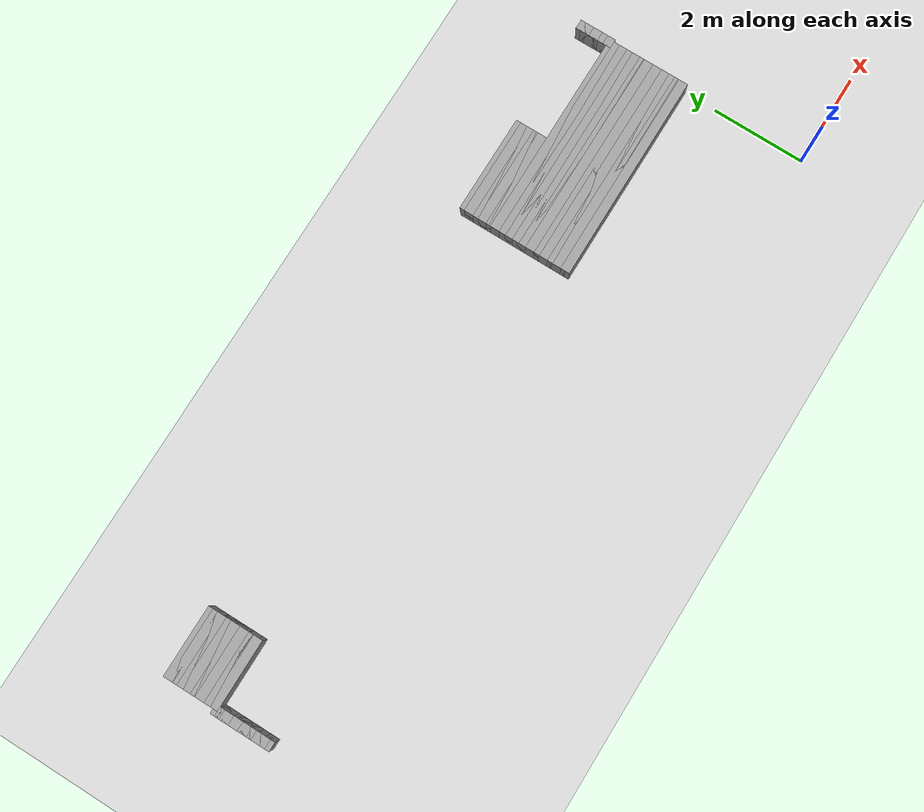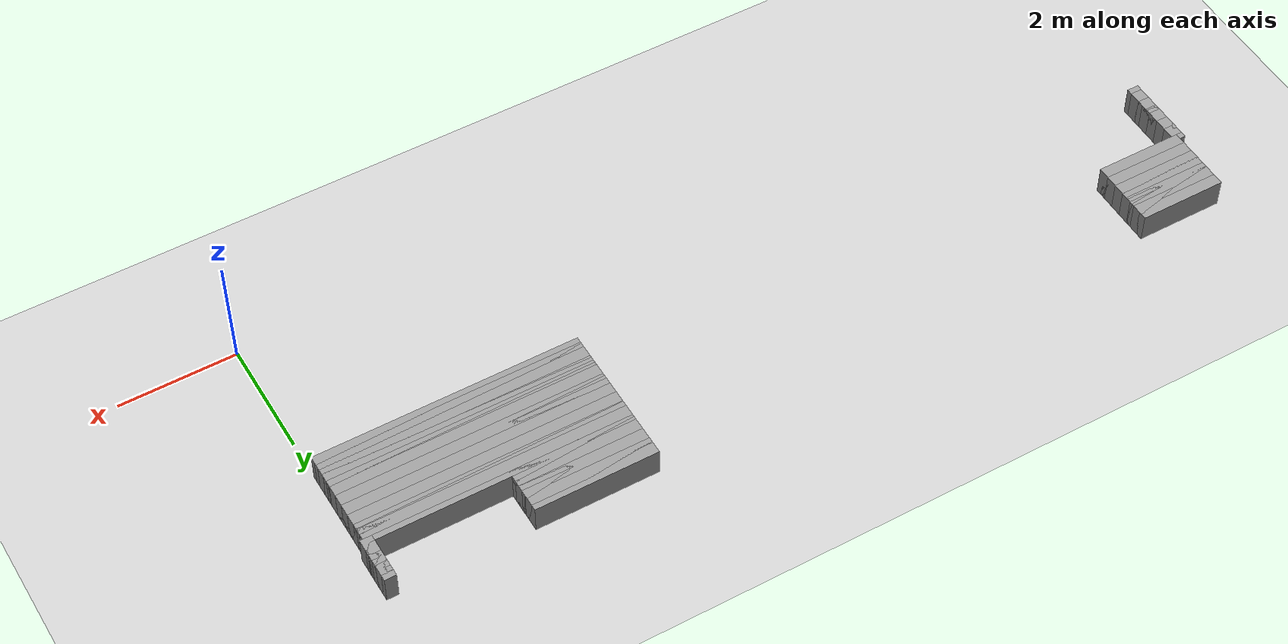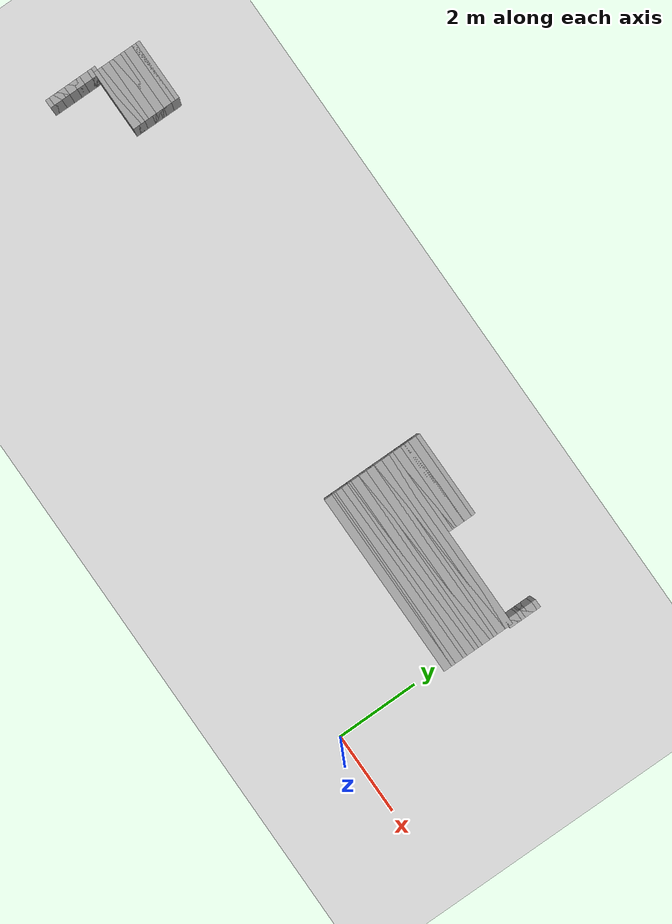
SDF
<sdf version="1.6">
 <world name="GridMap">
  <include><uri>model://sun</uri></include>
  <include><uri>model://ground_plane</uri></include>
  <model name="GridMap">
   <link name="Wall_(22.5,28.0)">
    <collision name="Wall_(22.5,28.0)_Collision">
     <geometry><box><size>4.5 0.2 0.5</size></box></geometry>
     <pose>-2.25 2.8000000000000003 0.25 0 -0 0</pose>
    </collision>
    <inertial>
     <mass>0.5</mass>
     <pose>0 0.01 0 0 0 0</pose>
     <inertia><ixx>0.004</ixx><ixy>0.001</ixy><ixz>0</ixz><iyy>0.006</iyy><iyz>0</iyz><izz>0.007</izz></inertia>
    </inertial>
    <visual name="Wall_(22.5,28.0)_Visual">
     <geometry><box><size>4.5 0.2 0.5</size></box></geometry>
     <pose>-2.25 2.8000000000000003 0.25 0 -0 0</pose>
     <material>
      <script><uri>file://media/materials/scripts/gazebo.material</uri><name>Gazebo/Grey</name></script>
      <ambient>1 1 1 1</ambient>
     </material>
     <meta><layer>0</layer></meta>
    </visual>
   </link>
   <link name="Wall_(149.0,28.0)">
    <collision name="Wall_(149.0,28.0)_Collision">
     <geometry><box><size>0.2 0.2 0.5</size></box></geometry>
     <pose>-14.9 2.8000000000000003 0.25 0 -0 0</pose>
    </collision>
    <inertial>
     <mass>0.5</mass>
     <pose>0 0.01 0 0 0 0</pose>
     <inertia><ixx>0.004</ixx><ixy>0.001</ixy><ixz>0</ixz><iyy>0.006</iyy><iyz>0</iyz><izz>0.007</izz></inertia>
    </inertial>
    <visual name="Wall_(149.0,28.0)_Visual">
     <geometry><box><size>0.2 0.2 0.5</size></box></geometry>
     <pose>-14.9 2.8000000000000003 0.25 0 -0 0</pose>
     <material>
      <script><uri>file://media/materials/scripts/gazebo.material</uri><name>Gazebo/Grey</name></script>
      <ambient>1 1 1 1</ambient>
     </material>
     <meta><layer>0</layer></meta>
    </visual>
   </link>
   <link name="Wall_(22.5,29.0)">
    <collision name="Wall_(22.5,29.0)_Collision">
     <geometry><box><size>4.5 0.2 0.5</size></box></geometry>
     <pose>-2.25 2.9000000000000004 0.25 0 -0 0</pose>
    </collision>
    <inertial>
     <mass>0.5</mass>
     <pose>0 0.01 0 0 0 0</pose>
     <inertia><ixx>0.004</ixx><ixy>0.001</ixy><ixz>0</ixz><iyy>0.006</iyy><iyz>0</iyz><izz>0.007</izz></inertia>
    </inertial>
    <visual name="Wall_(22.5,29.0)_Visual">
     <geometry><box><size>4.5 0.2 0.5</size></box></geometry>
     <pose>-2.25 2.9000000000000004 0.25 0 -0 0</pose>
     <material>
      <script><uri>file://media/materials/scripts/gazebo.material</uri><name>Gazebo/Grey</name></script>
      <ambient>1 1 1 1</ambient>
     </material>
     <meta><layer>0</layer></meta>
    </visual>
   </link>
   <link name="Wall_(149.0,29.0)">
    <collision name="Wall_(149.0,29.0)_Collision">
     <geometry><box><size>0.2 0.2 0.5</size></box></geometry>
     <pose>-14.9 2.9000000000000004 0.25 0 -0 0</pose>
    </collision>
    <inertial>
     <mass>0.5</mass>
     <pose>0 0.01 0 0 0 0</pose>
     <inertia><ixx>0.004</ixx><ixy>0.001</ixy><ixz>0</ixz><iyy>0.006</iyy><iyz>0</iyz><izz>0.007</izz></inertia>
    </inertial>
    <visual name="Wall_(149.0,29.0)_Visual">
     <geometry><box><size>0.2 0.2 0.5</size></box></geometry>
     <pose>-14.9 2.9000000000000004 0.25 0 -0 0</pose>
     <material>
      <script><uri>file://media/materials/scripts/gazebo.material</uri><name>Gazebo/Grey</name></script>
      <ambient>1 1 1 1</ambient>
     </material>
     <meta><layer>0</layer></meta>
    </visual>
   </link>
   <link name="Wall_(22.5,30.0)">
    <collision name="Wall_(22.5,30.0)_Collision">
     <geometry><box><size>4.5 0.2 0.5</size></box></geometry>
     <pose>-2.25 3.0 0.25 0 -0 0</pose>
    </collision>
    <inertial>
     <mass>0.5</mass>
     <pose>0 0.01 0 0 0 0</pose>
     <inertia><ixx>0.004</ixx><ixy>0.001</ixy><ixz>0</ixz><iyy>0.006</iyy><iyz>0</iyz><izz>0.007</izz></inertia>
    </inertial>
    <visual name="Wall_(22.5,30.0)_Visual">
     <geometry><box><size>4.5 0.2 0.5</size></box></geometry>
     <pose>-2.25 3.0 0.25 0 -0 0</pose>
     <material>
      <script><uri>file://media/materials/scripts/gazebo.material</uri><name>Gazebo/Grey</name></script>
      <ambient>1 1 1 1</ambient>
     </material>
     <meta><layer>0</layer></meta>
    </visual>
   </link>
   <link name="Wall_(149.0,30.0)">
    <collision name="Wall_(149.0,30.0)_Collision">
     <geometry><box><size>0.2 0.2 0.5</size></box></geometry>
     <pose>-14.9 3.0 0.25 0 -0 0</pose>
    </collision>
    <inertial>
     <mass>0.5</mass>
     <pose>0 0.01 0 0 0 0</pose>
     <inertia><ixx>0.004</ixx><ixy>0.001</ixy><ixz>0</ixz><iyy>0.006</iyy><iyz>0</iyz><izz>0.007</izz></inertia>
    </inertial>
    <visual name="Wall_(149.0,30.0)_Visual">
     <geometry><box><size>0.2 0.2 0.5</size></box></geometry>
     <pose>-14.9 3.0 0.25 0 -0 0</pose>
     <material>
      <script><uri>file://media/materials/scripts/gazebo.material</uri><name>Gazebo/Grey</name></script>
      <ambient>1 1 1 1</ambient>
     </material>
     <meta><layer>0</layer></meta>
    </visual>
   </link>
   <link name="Wall_(22.5,31.0)">
    <collision name="Wall_(22.5,31.0)_Collision">
     <geometry><box><size>4.5 0.2 0.5</size></box></geometry>
     <pose>-2.25 3.1 0.25 0 -0 0</pose>
    </collision>
    <inertial>
     <mass>0.5</mass>
     <pose>0 0.01 0 0 0 0</pose>
     <inertia><ixx>0.004</ixx><ixy>0.001</ixy><ixz>0</ixz><iyy>0.006</iyy><iyz>0</iyz><izz>0.007</izz></inertia>
    </inertial>
    <visual name="Wall_(22.5,31.0)_Visual">
     <geometry><box><size>4.5 0.2 0.5</size></box></geometry>
     <pose>-2.25 3.1 0.25 0 -0 0</pose>
     <material>
      <script><uri>file://media/materials/scripts/gazebo.material</uri><name>Gazebo/Grey</name></script>
      <ambient>1 1 1 1</ambient>
     </material>
     <meta><layer>0</layer></meta>
    </visual>
   </link>
   <link name="Wall_(149.0,31.0)">
    <collision name="Wall_(149.0,31.0)_Collision">
     <geometry><box><size>0.2 0.2 0.5</size></box></geometry>
     <pose>-14.9 3.1 0.25 0 -0 0</pose>
    </collision>
    <inertial>
     <mass>0.5</mass>
     <pose>0 0.01 0 0 0 0</pose>
     <inertia><ixx>0.004</ixx><ixy>0.001</ixy><ixz>0</ixz><iyy>0.006</iyy><iyz>0</iyz><izz>0.007</izz></inertia>
    </inertial>
    <visual name="Wall_(149.0,31.0)_Visual">
     <geometry><box><size>0.2 0.2 0.5</size></box></geometry>
     <pose>-14.9 3.1 0.25 0 -0 0</pose>
     <material>
      <script><uri>file://media/materials/scripts/gazebo.material</uri><name>Gazebo/Grey</name></script>
      <ambient>1 1 1 1</ambient>
     </material>
     <meta><layer>0</layer></meta>
    </visual>
   </link>
   <link name="Wall_(22.5,32.0)">
    <collision name="Wall_(22.5,32.0)_Collision">
     <geometry><box><size>4.5 0.2 0.5</size></box></geometry>
     <pose>-2.25 3.2 0.25 0 -0 0</pose>
    </collision>
    <inertial>
     <mass>0.5</mass>
     <pose>0 0.01 0 0 0 0</pose>
     <inertia><ixx>0.004</ixx><ixy>0.001</ixy><ixz>0</ixz><iyy>0.006</iyy><iyz>0</iyz><izz>0.007</izz></inertia>
    </inertial>
    <visual name="Wall_(22.5,32.0)_Visual">
     <geometry><box><size>4.5 0.2 0.5</size></box></geometry>
     <pose>-2.25 3.2 0.25 0 -0 0</pose>
     <material>
      <script><uri>file://media/materials/scripts/gazebo.material</uri><name>Gazebo/Grey</name></script>
      <ambient>1 1 1 1</ambient>
     </material>
     <meta><layer>0</layer></meta>
    </visual>
   </link>
   <link name="Wall_(149.0,32.0)">
    <collision name="Wall_(149.0,32.0)_Collision">
     <geometry><box><size>0.2 0.2 0.5</size></box></geometry>
     <pose>-14.9 3.2 0.25 0 -0 0</pose>
    </collision>
    <inertial>
     <mass>0.5</mass>
     <pose>0 0.01 0 0 0 0</pose>
     <inertia><ixx>0.004</ixx><ixy>0.001</ixy><ixz>0</ixz><iyy>0.006</iyy><iyz>0</iyz><izz>0.007</izz></inertia>
    </inertial>
    <visual name="Wall_(149.0,32.0)_Visual">
     <geometry><box><size>0.2 0.2 0.5</size></box></geometry>
     <pose>-14.9 3.2 0.25 0 -0 0</pose>
     <material>
      <script><uri>file://media/materials/scripts/gazebo.material</uri><name>Gazebo/Grey</name></script>
      <ambient>1 1 1 1</ambient>
     </material>
     <meta><layer>0</layer></meta>
    </visual>
   </link>
   <link name="Wall_(22.5,33.0)">
    <collision name="Wall_(22.5,33.0)_Collision">
     <geometry><box><size>4.5 0.2 0.5</size></box></geometry>
     <pose>-2.25 3.3000000000000003 0.25 0 -0 0</pose>
    </collision>
    <inertial>
     <mass>0.5</mass>
     <pose>0 0.01 0 0 0 0</pose>
     <inertia><ixx>0.004</ixx><ixy>0.001</ixy><ixz>0</ixz><iyy>0.006</iyy><iyz>0</iyz><izz>0.007</izz></inertia>
    </inertial>
    <visual name="Wall_(22.5,33.0)_Visual">
     <geometry><box><size>4.5 0.2 0.5</size></box></geometry>
     <pose>-2.25 3.3000000000000003 0.25 0 -0 0</pose>
     <material>
      <script><uri>file://media/materials/scripts/gazebo.material</uri><name>Gazebo/Grey</name></script>
      <ambient>1 1 1 1</ambient>
     </material>
     <meta><layer>0</layer></meta>
    </visual>
   </link>
   <link name="Wall_(149.0,33.0)">
    <collision name="Wall_(149.0,33.0)_Collision">
     <geometry><box><size>0.2 0.2 0.5</size></box></geometry>
     <pose>-14.9 3.3000000000000003 0.25 0 -0 0</pose>
    </collision>
    <inertial>
     <mass>0.5</mass>
     <pose>0 0.01 0 0 0 0</pose>
     <inertia><ixx>0.004</ixx><ixy>0.001</ixy><ixz>0</ixz><iyy>0.006</iyy><iyz>0</iyz><izz>0.007</izz></inertia>
    </inertial>
    <visual name="Wall_(149.0,33.0)_Visual">
     <geometry><box><size>0.2 0.2 0.5</size></box></geometry>
     <pose>-14.9 3.3000000000000003 0.25 0 -0 0</pose>
     <material>
      <script><uri>file://media/materials/scripts/gazebo.material</uri><name>Gazebo/Grey</name></script>
      <ambient>1 1 1 1</ambient>
     </material>
     <meta><layer>0</layer></meta>
    </visual>
   </link>
   <link name="Wall_(22.5,34.0)">
    <collision name="Wall_(22.5,34.0)_Collision">
     <geometry><box><size>4.5 0.2 0.5</size></box></geometry>
     <pose>-2.25 3.4000000000000004 0.25 0 -0 0</pose>
    </collision>
    <inertial>
     <mass>0.5</mass>
     <pose>0 0.01 0 0 0 0</pose>
     <inertia><ixx>0.004</ixx><ixy>0.001</ixy><ixz>0</ixz><iyy>0.006</iyy><iyz>0</iyz><izz>0.007</izz></inertia>
    </inertial>
    <visual name="Wall_(22.5,34.0)_Visual">
     <geometry><box><size>4.5 0.2 0.5</size></box></geometry>
     <pose>-2.25 3.4000000000000004 0.25 0 -0 0</pose>
     <material>
      <script><uri>file://media/materials/scripts/gazebo.material</uri><name>Gazebo/Grey</name></script>
      <ambient>1 1 1 1</ambient>
     </material>
     <meta><layer>0</layer></meta>
    </visual>
   </link>
   <link name="Wall_(149.0,34.0)">
    <collision name="Wall_(149.0,34.0)_Collision">
     <geometry><box><size>0.2 0.2 0.5</size></box></geometry>
     <pose>-14.9 3.4000000000000004 0.25 0 -0 0</pose>
    </collision>
    <inertial>
     <mass>0.5</mass>
     <pose>0 0.01 0 0 0 0</pose>
     <inertia><ixx>0.004</ixx><ixy>0.001</ixy><ixz>0</ixz><iyy>0.006</iyy><iyz>0</iyz><izz>0.007</izz></inertia>
    </inertial>
    <visual name="Wall_(149.0,34.0)_Visual">
     <geometry><box><size>0.2 0.2 0.5</size></box></geometry>
     <pose>-14.9 3.4000000000000004 0.25 0 -0 0</pose>
     <material>
      <script><uri>file://media/materials/scripts/gazebo.material</uri><name>Gazebo/Grey</name></script>
      <ambient>1 1 1 1</ambient>
     </material>
     <meta><layer>0</layer></meta>
    </visual>
   </link>
   <link name="Wall_(22.5,35.0)">
    <collision name="Wall_(22.5,35.0)_Collision">
     <geometry><box><size>4.5 0.2 0.5</size></box></geometry>
     <pose>-2.25 3.5 0.25 0 -0 0</pose>
    </collision>
    <inertial>
     <mass>0.5</mass>
     <pose>0 0.01 0 0 0 0</pose>
     <inertia><ixx>0.004</ixx><ixy>0.001</ixy><ixz>0</ixz><iyy>0.006</iyy><iyz>0</iyz><izz>0.007</izz></inertia>
    </inertial>
    <visual name="Wall_(22.5,35.0)_Visual">
     <geometry><box><size>4.5 0.2 0.5</size></box></geometry>
     <pose>-2.25 3.5 0.25 0 -0 0</pose>
     <material>
      <script><uri>file://media/materials/scripts/gazebo.material</uri><name>Gazebo/Grey</name></script>
      <ambient>1 1 1 1</ambient>
     </material>
     <meta><layer>0</layer></meta>
    </visual>
   </link>
   <link name="Wall_(149.0,35.0)">
    <collision name="Wall_(149.0,35.0)_Collision">
     <geometry><box><size>0.2 0.2 0.5</size></box></geometry>
     <pose>-14.9 3.5 0.25 0 -0 0</pose>
    </collision>
    <inertial>
     <mass>0.5</mass>
     <pose>0 0.01 0 0 0 0</pose>
     <inertia><ixx>0.004</ixx><ixy>0.001</ixy><ixz>0</ixz><iyy>0.006</iyy><iyz>0</iyz><izz>0.007</izz></inertia>
    </inertial>
    <visual name="Wall_(149.0,35.0)_Visual">
     <geometry><box><size>0.2 0.2 0.5</size></box></geometry>
     <pose>-14.9 3.5 0.25 0 -0 0</pose>
     <material>
      <script><uri>file://media/materials/scripts/gazebo.material</uri><name>Gazebo/Grey</name></script>
      <ambient>1 1 1 1</ambient>
     </material>
     <meta><layer>0</layer></meta>
    </visual>
   </link>
   <link name="Wall_(22.5,36.0)">
    <collision name="Wall_(22.5,36.0)_Collision">
     <geometry><box><size>4.5 0.2 0.5</size></box></geometry>
     <pose>-2.25 3.6 0.25 0 -0 0</pose>
    </collision>
    <inertial>
     <mass>0.5</mass>
     <pose>0 0.01 0 0 0 0</pose>
     <inertia><ixx>0.004</ixx><ixy>0.001</ixy><ixz>0</ixz><iyy>0.006</iyy><iyz>0</iyz><izz>0.007</izz></inertia>
    </inertial>
    <visual name="Wall_(22.5,36.0)_Visual">
     <geometry><box><size>4.5 0.2 0.5</size></box></geometry>
     <pose>-2.25 3.6 0.25 0 -0 0</pose>
     <material>
      <script><uri>file://media/materials/scripts/gazebo.material</uri><name>Gazebo/Grey</name></script>
      <ambient>1 1 1 1</ambient>
     </material>
     <meta><layer>0</layer></meta>
    </visual>
   </link>
   <link name="Wall_(149.0,36.0)">
    <collision name="Wall_(149.0,36.0)_Collision">
     <geometry><box><size>0.2 0.2 0.5</size></box></geometry>
     <pose>-14.9 3.6 0.25 0 -0 0</pose>
    </collision>
    <inertial>
     <mass>0.5</mass>
     <pose>0 0.01 0 0 0 0</pose>
     <inertia><ixx>0.004</ixx><ixy>0.001</ixy><ixz>0</ixz><iyy>0.006</iyy><iyz>0</iyz><izz>0.007</izz></inertia>
    </inertial>
    <visual name="Wall_(149.0,36.0)_Visual">
     <geometry><box><size>0.2 0.2 0.5</size></box></geometry>
     <pose>-14.9 3.6 0.25 0 -0 0</pose>
     <material>
      <script><uri>file://media/materials/scripts/gazebo.material</uri><name>Gazebo/Grey</name></script>
      <ambient>1 1 1 1</ambient>
     </material>
     <meta><layer>0</layer></meta>
    </visual>
   </link>
   <link name="Wall_(22.5,37.0)">
    <collision name="Wall_(22.5,37.0)_Collision">
     <geometry><box><size>4.5 0.2 0.5</size></box></geometry>
     <pose>-2.25 3.7 0.25 0 -0 0</pose>
    </collision>
    <inertial>
     <mass>0.5</mass>
     <pose>0 0.01 0 0 0 0</pose>
     <inertia><ixx>0.004</ixx><ixy>0.001</ixy><ixz>0</ixz><iyy>0.006</iyy><iyz>0</iyz><izz>0.007</izz></inertia>
    </inertial>
    <visual name="Wall_(22.5,37.0)_Visual">
     <geometry><box><size>4.5 0.2 0.5</size></box></geometry>
     <pose>-2.25 3.7 0.25 0 -0 0</pose>
     <material>
      <script><uri>file://media/materials/scripts/gazebo.material</uri><name>Gazebo/Grey</name></script>
      <ambient>1 1 1 1</ambient>
     </material>
     <meta><layer>0</layer></meta>
    </visual>
   </link>
   <link name="Wall_(149.0,37.0)">
    <collision name="Wall_(149.0,37.0)_Collision">
     <geometry><box><size>0.2 0.2 0.5</size></box></geometry>
     <pose>-14.9 3.7 0.25 0 -0 0</pose>
    </collision>
    <inertial>
     <mass>0.5</mass>
     <pose>0 0.01 0 0 0 0</pose>
     <inertia><ixx>0.004</ixx><ixy>0.001</ixy><ixz>0</ixz><iyy>0.006</iyy><iyz>0</iyz><izz>0.007</izz></inertia>
    </inertial>
    <visual name="Wall_(149.0,37.0)_Visual">
     <geometry><box><size>0.2 0.2 0.5</size></box></geometry>
     <pose>-14.9 3.7 0.25 0 -0 0</pose>
     <material>
      <script><uri>file://media/materials/scripts/gazebo.material</uri><name>Gazebo/Grey</name></script>
      <ambient>1 1 1 1</ambient>
     </material>
     <meta><layer>0</layer></meta>
    </visual>
   </link>
   <link name="Wall_(22.5,38.0)">
    <collision name="Wall_(22.5,38.0)_Collision">
     <geometry><box><size>4.5 0.2 0.5</size></box></geometry>
     <pose>-2.25 3.8000000000000003 0.25 0 -0 0</pose>
    </collision>
    <inertial>
     <mass>0.5</mass>
     <pose>0 0.01 0 0 0 0</pose>
     <inertia><ixx>0.004</ixx><ixy>0.001</ixy><ixz>0</ixz><iyy>0.006</iyy><iyz>0</iyz><izz>0.007</izz></inertia>
    </inertial>
    <visual name="Wall_(22.5,38.0)_Visual">
     <geometry><box><size>4.5 0.2 0.5</size></box></geometry>
     <pose>-2.25 3.8000000000000003 0.25 0 -0 0</pose>
     <material>
      <script><uri>file://media/materials/scripts/gazebo.material</uri><name>Gazebo/Grey</name></script>
      <ambient>1 1 1 1</ambient>
     </material>
     <meta><layer>0</layer></meta>
    </visual>
   </link>
   <link name="Wall_(149.0,38.0)">
    <collision name="Wall_(149.0,38.0)_Collision">
     <geometry><box><size>0.2 0.2 0.5</size></box></geometry>
     <pose>-14.9 3.8000000000000003 0.25 0 -0 0</pose>
    </collision>
    <inertial>
     <mass>0.5</mass>
     <pose>0 0.01 0 0 0 0</pose>
     <inertia><ixx>0.004</ixx><ixy>0.001</ixy><ixz>0</ixz><iyy>0.006</iyy><iyz>0</iyz><izz>0.007</izz></inertia>
    </inertial>
    <visual name="Wall_(149.0,38.0)_Visual">
     <geometry><box><size>0.2 0.2 0.5</size></box></geometry>
     <pose>-14.9 3.8000000000000003 0.25 0 -0 0</pose>
     <material>
      <script><uri>file://media/materials/scripts/gazebo.material</uri><name>Gazebo/Grey</name></script>
      <ambient>1 1 1 1</ambient>
     </material>
     <meta><layer>0</layer></meta>
    </visual>
   </link>
   <link name="Wall_(22.5,39.0)">
    <collision name="Wall_(22.5,39.0)_Collision">
     <geometry><box><size>4.5 0.2 0.5</size></box></geometry>
     <pose>-2.25 3.9000000000000004 0.25 0 -0 0</pose>
    </collision>
    <inertial>
     <mass>0.5</mass>
     <pose>0 0.01 0 0 0 0</pose>
     <inertia><ixx>0.004</ixx><ixy>0.001</ixy><ixz>0</ixz><iyy>0.006</iyy><iyz>0</iyz><izz>0.007</izz></inertia>
    </inertial>
    <visual name="Wall_(22.5,39.0)_Visual">
     <geometry><box><size>4.5 0.2 0.5</size></box></geometry>
     <pose>-2.25 3.9000000000000004 0.25 0 -0 0</pose>
     <material>
      <script><uri>file://media/materials/scripts/gazebo.material</uri><name>Gazebo/Grey</name></script>
      <ambient>1 1 1 1</ambient>
     </material>
     <meta><layer>0</layer></meta>
    </visual>
   </link>
   <link name="Wall_(149.0,39.0)">
    <collision name="Wall_(149.0,39.0)_Collision">
     <geometry><box><size>0.2 0.2 0.5</size></box></geometry>
     <pose>-14.9 3.9000000000000004 0.25 0 -0 0</pose>
    </collision>
    <inertial>
     <mass>0.5</mass>
     <pose>0 0.01 0 0 0 0</pose>
     <inertia><ixx>0.004</ixx><ixy>0.001</ixy><ixz>0</ixz><iyy>0.006</iyy><iyz>0</iyz><izz>0.007</izz></inertia>
    </inertial>
    <visual name="Wall_(149.0,39.0)_Visual">
     <geometry><box><size>0.2 0.2 0.5</size></box></geometry>
     <pose>-14.9 3.9000000000000004 0.25 0 -0 0</pose>
     <material>
      <script><uri>file://media/materials/scripts/gazebo.material</uri><name>Gazebo/Grey</name></script>
      <ambient>1 1 1 1</ambient>
     </material>
     <meta><layer>0</layer></meta>
    </visual>
   </link>
   <link name="Wall_(22.5,40.0)">
    <collision name="Wall_(22.5,40.0)_Collision">
     <geometry><box><size>4.5 0.2 0.5</size></box></geometry>
     <pose>-2.25 4.0 0.25 0 -0 0</pose>
    </collision>
    <inertial>
     <mass>0.5</mass>
     <pose>0 0.01 0 0 0 0</pose>
     <inertia><ixx>0.004</ixx><ixy>0.001</ixy><ixz>0</ixz><iyy>0.006</iyy><iyz>0</iyz><izz>0.007</izz></inertia>
    </inertial>
    <visual name="Wall_(22.5,40.0)_Visual">
     <geometry><box><size>4.5 0.2 0.5</size></box></geometry>
     <pose>-2.25 4.0 0.25 0 -0 0</pose>
     <material>
      <script><uri>file://media/materials/scripts/gazebo.material</uri><name>Gazebo/Grey</name></script>
      <ambient>1 1 1 1</ambient>
     </material>
     <meta><layer>0</layer></meta>
    </visual>
   </link>
   <link name="Wall_(141.5,40.0)">
    <collision name="Wall_(141.5,40.0)_Collision">
     <geometry><box><size>1.5 0.2 0.5</size></box></geometry>
     <pose>-14.15 4.0 0.25 0 -0 0</pose>
    </collision>
    <inertial>
     <mass>0.5</mass>
     <pose>0 0.01 0 0 0 0</pose>
     <inertia><ixx>0.004</ixx><ixy>0.001</ixy><ixz>0</ixz><iyy>0.006</iyy><iyz>0</iyz><izz>0.007</izz></inertia>
    </inertial>
    <visual name="Wall_(141.5,40.0)_Visual">
     <geometry><box><size>1.5 0.2 0.5</size></box></geometry>
     <pose>-14.15 4.0 0.25 0 -0 0</pose>
     <material>
      <script><uri>file://media/materials/scripts/gazebo.material</uri><name>Gazebo/Grey</name></script>
      <ambient>1 1 1 1</ambient>
     </material>
     <meta><layer>0</layer></meta>
    </visual>
   </link>
   <link name="Wall_(22.5,41.0)">
    <collision name="Wall_(22.5,41.0)_Collision">
     <geometry><box><size>4.5 0.2 0.5</size></box></geometry>
     <pose>-2.25 4.1000000000000005 0.25 0 -0 0</pose>
    </collision>
    <inertial>
     <mass>0.5</mass>
     <pose>0 0.01 0 0 0 0</pose>
     <inertia><ixx>0.004</ixx><ixy>0.001</ixy><ixz>0</ixz><iyy>0.006</iyy><iyz>0</iyz><izz>0.007</izz></inertia>
    </inertial>
    <visual name="Wall_(22.5,41.0)_Visual">
     <geometry><box><size>4.5 0.2 0.5</size></box></geometry>
     <pose>-2.25 4.1000000000000005 0.25 0 -0 0</pose>
     <material>
      <script><uri>file://media/materials/scripts/gazebo.material</uri><name>Gazebo/Grey</name></script>
      <ambient>1 1 1 1</ambient>
     </material>
     <meta><layer>0</layer></meta>
    </visual>
   </link>
   <link name="Wall_(141.5,41.0)">
    <collision name="Wall_(141.5,41.0)_Collision">
     <geometry><box><size>1.5 0.2 0.5</size></box></geometry>
     <pose>-14.15 4.1000000000000005 0.25 0 -0 0</pose>
    </collision>
    <inertial>
     <mass>0.5</mass>
     <pose>0 0.01 0 0 0 0</pose>
     <inertia><ixx>0.004</ixx><ixy>0.001</ixy><ixz>0</ixz><iyy>0.006</iyy><iyz>0</iyz><izz>0.007</izz></inertia>
    </inertial>
    <visual name="Wall_(141.5,41.0)_Visual">
     <geometry><box><size>1.5 0.2 0.5</size></box></geometry>
     <pose>-14.15 4.1000000000000005 0.25 0 -0 0</pose>
     <material>
      <script><uri>file://media/materials/scripts/gazebo.material</uri><name>Gazebo/Grey</name></script>
      <ambient>1 1 1 1</ambient>
     </material>
     <meta><layer>0</layer></meta>
    </visual>
   </link>
   <link name="Wall_(22.5,42.0)">
    <collision name="Wall_(22.5,42.0)_Collision">
     <geometry><box><size>4.5 0.2 0.5</size></box></geometry>
     <pose>-2.25 4.2 0.25 0 -0 0</pose>
    </collision>
    <inertial>
     <mass>0.5</mass>
     <pose>0 0.01 0 0 0 0</pose>
     <inertia><ixx>0.004</ixx><ixy>0.001</ixy><ixz>0</ixz><iyy>0.006</iyy><iyz>0</iyz><izz>0.007</izz></inertia>
    </inertial>
    <visual name="Wall_(22.5,42.0)_Visual">
     <geometry><box><size>4.5 0.2 0.5</size></box></geometry>
     <pose>-2.25 4.2 0.25 0 -0 0</pose>
     <material>
      <script><uri>file://media/materials/scripts/gazebo.material</uri><name>Gazebo/Grey</name></script>
      <ambient>1 1 1 1</ambient>
     </material>
     <meta><layer>0</layer></meta>
    </visual>
   </link>
   <link name="Wall_(141.5,42.0)">
    <collision name="Wall_(141.5,42.0)_Collision">
     <geometry><box><size>1.5 0.2 0.5</size></box></geometry>
     <pose>-14.15 4.2 0.25 0 -0 0</pose>
    </collision>
    <inertial>
     <mass>0.5</mass>
     <pose>0 0.01 0 0 0 0</pose>
     <inertia><ixx>0.004</ixx><ixy>0.001</ixy><ixz>0</ixz><iyy>0.006</iyy><iyz>0</iyz><izz>0.007</izz></inertia>
    </inertial>
    <visual name="Wall_(141.5,42.0)_Visual">
     <geometry><box><size>1.5 0.2 0.5</size></box></geometry>
     <pose>-14.15 4.2 0.25 0 -0 0</pose>
     <material>
      <script><uri>file://media/materials/scripts/gazebo.material</uri><name>Gazebo/Grey</name></script>
      <ambient>1 1 1 1</ambient>
     </material>
     <meta><layer>0</layer></meta>
    </visual>
   </link>
   <link name="Wall_(22.5,43.0)">
    <collision name="Wall_(22.5,43.0)_Collision">
     <geometry><box><size>4.5 0.2 0.5</size></box></geometry>
     <pose>-2.25 4.3 0.25 0 -0 0</pose>
    </collision>
    <inertial>
     <mass>0.5</mass>
     <pose>0 0.01 0 0 0 0</pose>
     <inertia><ixx>0.004</ixx><ixy>0.001</ixy><ixz>0</ixz><iyy>0.006</iyy><iyz>0</iyz><izz>0.007</izz></inertia>
    </inertial>
    <visual name="Wall_(22.5,43.0)_Visual">
     <geometry><box><size>4.5 0.2 0.5</size></box></geometry>
     <pose>-2.25 4.3 0.25 0 -0 0</pose>
     <material>
      <script><uri>file://media/materials/scripts/gazebo.material</uri><name>Gazebo/Grey</name></script>
      <ambient>1 1 1 1</ambient>
     </material>
     <meta><layer>0</layer></meta>
    </visual>
   </link>
   <link name="Wall_(141.5,43.0)">
    <collision name="Wall_(141.5,43.0)_Collision">
     <geometry><box><size>1.5 0.2 0.5</size></box></geometry>
     <pose>-14.15 4.3 0.25 0 -0 0</pose>
    </collision>
    <inertial>
     <mass>0.5</mass>
     <pose>0 0.01 0 0 0 0</pose>
     <inertia><ixx>0.004</ixx><ixy>0.001</ixy><ixz>0</ixz><iyy>0.006</iyy><iyz>0</iyz><izz>0.007</izz></inertia>
    </inertial>
    <visual name="Wall_(141.5,43.0)_Visual">
     <geometry><box><size>1.5 0.2 0.5</size></box></geometry>
     <pose>-14.15 4.3 0.25 0 -0 0</pose>
     <material>
      <script><uri>file://media/materials/scripts/gazebo.material</uri><name>Gazebo/Grey</name></script>
      <ambient>1 1 1 1</ambient>
     </material>
     <meta><layer>0</layer></meta>
    </visual>
   </link>
   <link name="Wall_(22.5,44.0)">
    <collision name="Wall_(22.5,44.0)_Collision">
     <geometry><box><size>4.5 0.2 0.5</size></box></geometry>
     <pose>-2.25 4.4 0.25 0 -0 0</pose>
    </collision>
    <inertial>
     <mass>0.5</mass>
     <pose>0 0.01 0 0 0 0</pose>
     <inertia><ixx>0.004</ixx><ixy>0.001</ixy><ixz>0</ixz><iyy>0.006</iyy><iyz>0</iyz><izz>0.007</izz></inertia>
    </inertial>
    <visual name="Wall_(22.5,44.0)_Visual">
     <geometry><box><size>4.5 0.2 0.5</size></box></geometry>
     <pose>-2.25 4.4 0.25 0 -0 0</pose>
     <material>
      <script><uri>file://media/materials/scripts/gazebo.material</uri><name>Gazebo/Grey</name></script>
      <ambient>1 1 1 1</ambient>
     </material>
     <meta><layer>0</layer></meta>
    </visual>
   </link>
   <link name="Wall_(141.5,44.0)">
    <collision name="Wall_(141.5,44.0)_Collision">
     <geometry><box><size>1.5 0.2 0.5</size></box></geometry>
     <pose>-14.15 4.4 0.25 0 -0 0</pose>
    </collision>
    <inertial>
     <mass>0.5</mass>
     <pose>0 0.01 0 0 0 0</pose>
     <inertia><ixx>0.004</ixx><ixy>0.001</ixy><ixz>0</ixz><iyy>0.006</iyy><iyz>0</iyz><izz>0.007</izz></inertia>
    </inertial>
    <visual name="Wall_(141.5,44.0)_Visual">
     <geometry><box><size>1.5 0.2 0.5</size></box></geometry>
     <pose>-14.15 4.4 0.25 0 -0 0</pose>
     <material>
      <script><uri>file://media/materials/scripts/gazebo.material</uri><name>Gazebo/Grey</name></script>
      <ambient>1 1 1 1</ambient>
     </material>
     <meta><layer>0</layer></meta>
    </visual>
   </link>
   <link name="Wall_(0.5,45.0)">
    <collision name="Wall_(0.5,45.0)_Collision">
     <geometry><box><size>0.2 0.2 0.5</size></box></geometry>
     <pose>-0.05 4.5 0.25 0 -0 0</pose>
    </collision>
    <inertial>
     <mass>0.5</mass>
     <pose>0 0.01 0 0 0 0</pose>
     <inertia><ixx>0.004</ixx><ixy>0.001</ixy><ixz>0</ixz><iyy>0.006</iyy><iyz>0</iyz><izz>0.007</izz></inertia>
    </inertial>
    <visual name="Wall_(0.5,45.0)_Visual">
     <geometry><box><size>0.2 0.2 0.5</size></box></geometry>
     <pose>-0.05 4.5 0.25 0 -0 0</pose>
     <material>
      <script><uri>file://media/materials/scripts/gazebo.material</uri><name>Gazebo/Grey</name></script>
      <ambient>1 1 1 1</ambient>
     </material>
     <meta><layer>0</layer></meta>
    </visual>
   </link>
   <link name="Wall_(34.5,45.0)">
    <collision name="Wall_(34.5,45.0)_Collision">
     <geometry><box><size>2.1 0.2 0.5</size></box></geometry>
     <pose>-3.45 4.5 0.25 0 -0 0</pose>
    </collision>
    <inertial>
     <mass>0.5</mass>
     <pose>0 0.01 0 0 0 0</pose>
     <inertia><ixx>0.004</ixx><ixy>0.001</ixy><ixz>0</ixz><iyy>0.006</iyy><iyz>0</iyz><izz>0.007</izz></inertia>
    </inertial>
    <visual name="Wall_(34.5,45.0)_Visual">
     <geometry><box><size>2.1 0.2 0.5</size></box></geometry>
     <pose>-3.45 4.5 0.25 0 -0 0</pose>
     <material>
      <script><uri>file://media/materials/scripts/gazebo.material</uri><name>Gazebo/Grey</name></script>
      <ambient>1 1 1 1</ambient>
     </material>
     <meta><layer>0</layer></meta>
    </visual>
   </link>
   <link name="Wall_(141.5,45.0)">
    <collision name="Wall_(141.5,45.0)_Collision">
     <geometry><box><size>1.5 0.2 0.5</size></box></geometry>
     <pose>-14.15 4.5 0.25 0 -0 0</pose>
    </collision>
    <inertial>
     <mass>0.5</mass>
     <pose>0 0.01 0 0 0 0</pose>
     <inertia><ixx>0.004</ixx><ixy>0.001</ixy><ixz>0</ixz><iyy>0.006</iyy><iyz>0</iyz><izz>0.007</izz></inertia>
    </inertial>
    <visual name="Wall_(141.5,45.0)_Visual">
     <geometry><box><size>1.5 0.2 0.5</size></box></geometry>
     <pose>-14.15 4.5 0.25 0 -0 0</pose>
     <material>
      <script><uri>file://media/materials/scripts/gazebo.material</uri><name>Gazebo/Grey</name></script>
      <ambient>1 1 1 1</ambient>
     </material>
     <meta><layer>0</layer></meta>
    </visual>
   </link>
   <link name="Wall_(0.5,46.0)">
    <collision name="Wall_(0.5,46.0)_Collision">
     <geometry><box><size>0.2 0.2 0.5</size></box></geometry>
     <pose>-0.05 4.6000000000000005 0.25 0 -0 0</pose>
    </collision>
    <inertial>
     <mass>0.5</mass>
     <pose>0 0.01 0 0 0 0</pose>
     <inertia><ixx>0.004</ixx><ixy>0.001</ixy><ixz>0</ixz><iyy>0.006</iyy><iyz>0</iyz><izz>0.007</izz></inertia>
    </inertial>
    <visual name="Wall_(0.5,46.0)_Visual">
     <geometry><box><size>0.2 0.2 0.5</size></box></geometry>
     <pose>-0.05 4.6000000000000005 0.25 0 -0 0</pose>
     <material>
      <script><uri>file://media/materials/scripts/gazebo.material</uri><name>Gazebo/Grey</name></script>
      <ambient>1 1 1 1</ambient>
     </material>
     <meta><layer>0</layer></meta>
    </visual>
   </link>
   <link name="Wall_(34.5,46.0)">
    <collision name="Wall_(34.5,46.0)_Collision">
     <geometry><box><size>2.1 0.2 0.5</size></box></geometry>
     <pose>-3.45 4.6000000000000005 0.25 0 -0 0</pose>
    </collision>
    <inertial>
     <mass>0.5</mass>
     <pose>0 0.01 0 0 0 0</pose>
     <inertia><ixx>0.004</ixx><ixy>0.001</ixy><ixz>0</ixz><iyy>0.006</iyy><iyz>0</iyz><izz>0.007</izz></inertia>
    </inertial>
    <visual name="Wall_(34.5,46.0)_Visual">
     <geometry><box><size>2.1 0.2 0.5</size></box></geometry>
     <pose>-3.45 4.6000000000000005 0.25 0 -0 0</pose>
     <material>
      <script><uri>file://media/materials/scripts/gazebo.material</uri><name>Gazebo/Grey</name></script>
      <ambient>1 1 1 1</ambient>
     </material>
     <meta><layer>0</layer></meta>
    </visual>
   </link>
   <link name="Wall_(141.5,46.0)">
    <collision name="Wall_(141.5,46.0)_Collision">
     <geometry><box><size>1.5 0.2 0.5</size></box></geometry>
     <pose>-14.15 4.6000000000000005 0.25 0 -0 0</pose>
    </collision>
    <inertial>
     <mass>0.5</mass>
     <pose>0 0.01 0 0 0 0</pose>
     <inertia><ixx>0.004</ixx><ixy>0.001</ixy><ixz>0</ixz><iyy>0.006</iyy><iyz>0</iyz><izz>0.007</izz></inertia>
    </inertial>
    <visual name="Wall_(141.5,46.0)_Visual">
     <geometry><box><size>1.5 0.2 0.5</size></box></geometry>
     <pose>-14.15 4.6000000000000005 0.25 0 -0 0</pose>
     <material>
      <script><uri>file://media/materials/scripts/gazebo.material</uri><name>Gazebo/Grey</name></script>
      <ambient>1 1 1 1</ambient>
     </material>
     <meta><layer>0</layer></meta>
    </visual>
   </link>
   <link name="Wall_(0.5,47.0)">
    <collision name="Wall_(0.5,47.0)_Collision">
     <geometry><box><size>0.2 0.2 0.5</size></box></geometry>
     <pose>-0.05 4.7 0.25 0 -0 0</pose>
    </collision>
    <inertial>
     <mass>0.5</mass>
     <pose>0 0.01 0 0 0 0</pose>
     <inertia><ixx>0.004</ixx><ixy>0.001</ixy><ixz>0</ixz><iyy>0.006</iyy><iyz>0</iyz><izz>0.007</izz></inertia>
    </inertial>
    <visual name="Wall_(0.5,47.0)_Visual">
     <geometry><box><size>0.2 0.2 0.5</size></box></geometry>
     <pose>-0.05 4.7 0.25 0 -0 0</pose>
     <material>
      <script><uri>file://media/materials/scripts/gazebo.material</uri><name>Gazebo/Grey</name></script>
      <ambient>1 1 1 1</ambient>
     </material>
     <meta><layer>0</layer></meta>
    </visual>
   </link>
   <link name="Wall_(34.5,47.0)">
    <collision name="Wall_(34.5,47.0)_Collision">
     <geometry><box><size>2.1 0.2 0.5</size></box></geometry>
     <pose>-3.45 4.7 0.25 0 -0 0</pose>
    </collision>
    <inertial>
     <mass>0.5</mass>
     <pose>0 0.01 0 0 0 0</pose>
     <inertia><ixx>0.004</ixx><ixy>0.001</ixy><ixz>0</ixz><iyy>0.006</iyy><iyz>0</iyz><izz>0.007</izz></inertia>
    </inertial>
    <visual name="Wall_(34.5,47.0)_Visual">
     <geometry><box><size>2.1 0.2 0.5</size></box></geometry>
     <pose>-3.45 4.7 0.25 0 -0 0</pose>
     <material>
      <script><uri>file://media/materials/scripts/gazebo.material</uri><name>Gazebo/Grey</name></script>
      <ambient>1 1 1 1</ambient>
     </material>
     <meta><layer>0</layer></meta>
    </visual>
   </link>
   <link name="Wall_(141.5,47.0)">
    <collision name="Wall_(141.5,47.0)_Collision">
     <geometry><box><size>1.5 0.2 0.5</size></box></geometry>
     <pose>-14.15 4.7 0.25 0 -0 0</pose>
    </collision>
    <inertial>
     <mass>0.5</mass>
     <pose>0 0.01 0 0 0 0</pose>
     <inertia><ixx>0.004</ixx><ixy>0.001</ixy><ixz>0</ixz><iyy>0.006</iyy><iyz>0</iyz><izz>0.007</izz></inertia>
    </inertial>
    <visual name="Wall_(141.5,47.0)_Visual">
     <geometry><box><size>1.5 0.2 0.5</size></box></geometry>
     <pose>-14.15 4.7 0.25 0 -0 0</pose>
     <material>
      <script><uri>file://media/materials/scripts/gazebo.material</uri><name>Gazebo/Grey</name></script>
      <ambient>1 1 1 1</ambient>
     </material>
     <meta><layer>0</layer></meta>
    </visual>
   </link>
   <link name="Wall_(0.5,48.0)">
    <collision name="Wall_(0.5,48.0)_Collision">
     <geometry><box><size>0.2 0.2 0.5</size></box></geometry>
     <pose>-0.05 4.800000000000001 0.25 0 -0 0</pose>
    </collision>
    <inertial>
     <mass>0.5</mass>
     <pose>0 0.01 0 0 0 0</pose>
     <inertia><ixx>0.004</ixx><ixy>0.001</ixy><ixz>0</ixz><iyy>0.006</iyy><iyz>0</iyz><izz>0.007</izz></inertia>
    </inertial>
    <visual name="Wall_(0.5,48.0)_Visual">
     <geometry><box><size>0.2 0.2 0.5</size></box></geometry>
     <pose>-0.05 4.800000000000001 0.25 0 -0 0</pose>
     <material>
      <script><uri>file://media/materials/scripts/gazebo.material</uri><name>Gazebo/Grey</name></script>
      <ambient>1 1 1 1</ambient>
     </material>
     <meta><layer>0</layer></meta>
    </visual>
   </link>
   <link name="Wall_(34.5,48.0)">
    <collision name="Wall_(34.5,48.0)_Collision">
     <geometry><box><size>2.1 0.2 0.5</size></box></geometry>
     <pose>-3.45 4.800000000000001 0.25 0 -0 0</pose>
    </collision>
    <inertial>
     <mass>0.5</mass>
     <pose>0 0.01 0 0 0 0</pose>
     <inertia><ixx>0.004</ixx><ixy>0.001</ixy><ixz>0</ixz><iyy>0.006</iyy><iyz>0</iyz><izz>0.007</izz></inertia>
    </inertial>
    <visual name="Wall_(34.5,48.0)_Visual">
     <geometry><box><size>2.1 0.2 0.5</size></box></geometry>
     <pose>-3.45 4.800000000000001 0.25 0 -0 0</pose>
     <material>
      <script><uri>file://media/materials/scripts/gazebo.material</uri><name>Gazebo/Grey</name></script>
      <ambient>1 1 1 1</ambient>
     </material>
     <meta><layer>0</layer></meta>
    </visual>
   </link>
   <link name="Wall_(141.5,48.0)">
    <collision name="Wall_(141.5,48.0)_Collision">
     <geometry><box><size>1.5 0.2 0.5</size></box></geometry>
     <pose>-14.15 4.800000000000001 0.25 0 -0 0</pose>
    </collision>
    <inertial>
     <mass>0.5</mass>
     <pose>0 0.01 0 0 0 0</pose>
     <inertia><ixx>0.004</ixx><ixy>0.001</ixy><ixz>0</ixz><iyy>0.006</iyy><iyz>0</iyz><izz>0.007</izz></inertia>
    </inertial>
    <visual name="Wall_(141.5,48.0)_Visual">
     <geometry><box><size>1.5 0.2 0.5</size></box></geometry>
     <pose>-14.15 4.800000000000001 0.25 0 -0 0</pose>
     <material>
      <script><uri>file://media/materials/scripts/gazebo.material</uri><name>Gazebo/Grey</name></script>
      <ambient>1 1 1 1</ambient>
     </material>
     <meta><layer>0</layer></meta>
    </visual>
   </link>
   <link name="Wall_(0.5,49.0)">
    <collision name="Wall_(0.5,49.0)_Collision">
     <geometry><box><size>0.2 0.2 0.5</size></box></geometry>
     <pose>-0.05 4.9 0.25 0 -0 0</pose>
    </collision>
    <inertial>
     <mass>0.5</mass>
     <pose>0 0.01 0 0 0 0</pose>
     <inertia><ixx>0.004</ixx><ixy>0.001</ixy><ixz>0</ixz><iyy>0.006</iyy><iyz>0</iyz><izz>0.007</izz></inertia>
    </inertial>
    <visual name="Wall_(0.5,49.0)_Visual">
     <geometry><box><size>0.2 0.2 0.5</size></box></geometry>
     <pose>-0.05 4.9 0.25 0 -0 0</pose>
     <material>
      <script><uri>file://media/materials/scripts/gazebo.material</uri><name>Gazebo/Grey</name></script>
      <ambient>1 1 1 1</ambient>
     </material>
     <meta><layer>0</layer></meta>
    </visual>
   </link>
   <link name="Wall_(34.5,49.0)">
    <collision name="Wall_(34.5,49.0)_Collision">
     <geometry><box><size>2.1 0.2 0.5</size></box></geometry>
     <pose>-3.45 4.9 0.25 0 -0 0</pose>
    </collision>
    <inertial>
     <mass>0.5</mass>
     <pose>0 0.01 0 0 0 0</pose>
     <inertia><ixx>0.004</ixx><ixy>0.001</ixy><ixz>0</ixz><iyy>0.006</iyy><iyz>0</iyz><izz>0.007</izz></inertia>
    </inertial>
    <visual name="Wall_(34.5,49.0)_Visual">
     <geometry><box><size>2.1 0.2 0.5</size></box></geometry>
     <pose>-3.45 4.9 0.25 0 -0 0</pose>
     <material>
      <script><uri>file://media/materials/scripts/gazebo.material</uri><name>Gazebo/Grey</name></script>
      <ambient>1 1 1 1</ambient>
     </material>
     <meta><layer>0</layer></meta>
    </visual>
   </link>
   <link name="Wall_(141.5,49.0)">
    <collision name="Wall_(141.5,49.0)_Collision">
     <geometry><box><size>1.5 0.2 0.5</size></box></geometry>
     <pose>-14.15 4.9 0.25 0 -0 0</pose>
    </collision>
    <inertial>
     <mass>0.5</mass>
     <pose>0 0.01 0 0 0 0</pose>
     <inertia><ixx>0.004</ixx><ixy>0.001</ixy><ixz>0</ixz><iyy>0.006</iyy><iyz>0</iyz><izz>0.007</izz></inertia>
    </inertial>
    <visual name="Wall_(141.5,49.0)_Visual">
     <geometry><box><size>1.5 0.2 0.5</size></box></geometry>
     <pose>-14.15 4.9 0.25 0 -0 0</pose>
     <material>
      <script><uri>file://media/materials/scripts/gazebo.material</uri><name>Gazebo/Grey</name></script>
      <ambient>1 1 1 1</ambient>
     </material>
     <meta><layer>0</layer></meta>
    </visual>
   </link>
   <link name="Wall_(0.5,50.0)">
    <collision name="Wall_(0.5,50.0)_Collision">
     <geometry><box><size>0.2 0.2 0.5</size></box></geometry>
     <pose>-0.05 5.0 0.25 0 -0 0</pose>
    </collision>
    <inertial>
     <mass>0.5</mass>
     <pose>0 0.01 0 0 0 0</pose>
     <inertia><ixx>0.004</ixx><ixy>0.001</ixy><ixz>0</ixz><iyy>0.006</iyy><iyz>0</iyz><izz>0.007</izz></inertia>
    </inertial>
    <visual name="Wall_(0.5,50.0)_Visual">
     <geometry><box><size>0.2 0.2 0.5</size></box></geometry>
     <pose>-0.05 5.0 0.25 0 -0 0</pose>
     <material>
      <script><uri>file://media/materials/scripts/gazebo.material</uri><name>Gazebo/Grey</name></script>
      <ambient>1 1 1 1</ambient>
     </material>
     <meta><layer>0</layer></meta>
    </visual>
   </link>
   <link name="Wall_(34.5,50.0)">
    <collision name="Wall_(34.5,50.0)_Collision">
     <geometry><box><size>2.1 0.2 0.5</size></box></geometry>
     <pose>-3.45 5.0 0.25 0 -0 0</pose>
    </collision>
    <inertial>
     <mass>0.5</mass>
     <pose>0 0.01 0 0 0 0</pose>
     <inertia><ixx>0.004</ixx><ixy>0.001</ixy><ixz>0</ixz><iyy>0.006</iyy><iyz>0</iyz><izz>0.007</izz></inertia>
    </inertial>
    <visual name="Wall_(34.5,50.0)_Visual">
     <geometry><box><size>2.1 0.2 0.5</size></box></geometry>
     <pose>-3.45 5.0 0.25 0 -0 0</pose>
     <material>
      <script><uri>file://media/materials/scripts/gazebo.material</uri><name>Gazebo/Grey</name></script>
      <ambient>1 1 1 1</ambient>
     </material>
     <meta><layer>0</layer></meta>
    </visual>
   </link>
   <link name="Wall_(141.5,50.0)">
    <collision name="Wall_(141.5,50.0)_Collision">
     <geometry><box><size>1.5 0.2 0.5</size></box></geometry>
     <pose>-14.15 5.0 0.25 0 -0 0</pose>
    </collision>
    <inertial>
     <mass>0.5</mass>
     <pose>0 0.01 0 0 0 0</pose>
     <inertia><ixx>0.004</ixx><ixy>0.001</ixy><ixz>0</ixz><iyy>0.006</iyy><iyz>0</iyz><izz>0.007</izz></inertia>
    </inertial>
    <visual name="Wall_(141.5,50.0)_Visual">
     <geometry><box><size>1.5 0.2 0.5</size></box></geometry>
     <pose>-14.15 5.0 0.25 0 -0 0</pose>
     <material>
      <script><uri>file://media/materials/scripts/gazebo.material</uri><name>Gazebo/Grey</name></script>
      <ambient>1 1 1 1</ambient>
     </material>
     <meta><layer>0</layer></meta>
    </visual>
   </link>
   <link name="Wall_(0.5,51.0)">
    <collision name="Wall_(0.5,51.0)_Collision">
     <geometry><box><size>0.2 0.2 0.5</size></box></geometry>
     <pose>-0.05 5.1000000000000005 0.25 0 -0 0</pose>
    </collision>
    <inertial>
     <mass>0.5</mass>
     <pose>0 0.01 0 0 0 0</pose>
     <inertia><ixx>0.004</ixx><ixy>0.001</ixy><ixz>0</ixz><iyy>0.006</iyy><iyz>0</iyz><izz>0.007</izz></inertia>
    </inertial>
    <visual name="Wall_(0.5,51.0)_Visual">
     <geometry><box><size>0.2 0.2 0.5</size></box></geometry>
     <pose>-0.05 5.1000000000000005 0.25 0 -0 0</pose>
     <material>
      <script><uri>file://media/materials/scripts/gazebo.material</uri><name>Gazebo/Grey</name></script>
      <ambient>1 1 1 1</ambient>
     </material>
     <meta><layer>0</layer></meta>
    </visual>
   </link>
   <link name="Wall_(34.5,51.0)">
    <collision name="Wall_(34.5,51.0)_Collision">
     <geometry><box><size>2.1 0.2 0.5</size></box></geometry>
     <pose>-3.45 5.1000000000000005 0.25 0 -0 0</pose>
    </collision>
    <inertial>
     <mass>0.5</mass>
     <pose>0 0.01 0 0 0 0</pose>
     <inertia><ixx>0.004</ixx><ixy>0.001</ixy><ixz>0</ixz><iyy>0.006</iyy><iyz>0</iyz><izz>0.007</izz></inertia>
    </inertial>
    <visual name="Wall_(34.5,51.0)_Visual">
     <geometry><box><size>2.1 0.2 0.5</size></box></geometry>
     <pose>-3.45 5.1000000000000005 0.25 0 -0 0</pose>
     <material>
      <script><uri>file://media/materials/scripts/gazebo.material</uri><name>Gazebo/Grey</name></script>
      <ambient>1 1 1 1</ambient>
     </material>
     <meta><layer>0</layer></meta>
    </visual>
   </link>
   <static>1</static>
  </model>
 </world>
</sdf>
